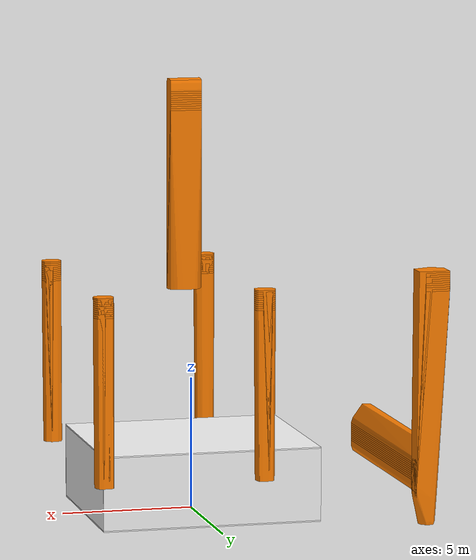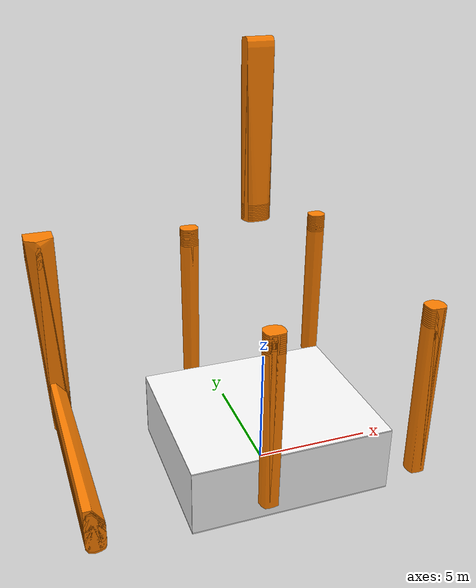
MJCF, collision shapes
<mujoco model="libero_crate_washing">
  <compiler angle="radian" autolimits="true" boundmass="0.001" boundinertia="0.001" />
  <statistic extent="0.5" center="0 0 1.0" />
  <option integrator="implicitfast" timestep="0.0005" solver="Newton" iterations="30" cone="elliptic" noslip_iterations="10">
    <flag multiccd="enable" />
  </option>
  <size memory="64M" />
  <visual>
    <global azimuth="120" elevation="-20" offwidth="1920" offheight="1080" />
    <quality shadowsize="8192" offsamples="16" />
    <headlight ambient="0.88 0.88 0.88" diffuse="0.45 0.45 0.45" specular="0 0 0" />
    <map znear="0.005" zfar="50" />
    <rgba haze="1.0 1.0 1.0 1" />
  </visual>
  <asset>
    <material name="room_white" rgba="0.97 0.97 0.97 1" />
    <material name="room_floor" rgba="0.92 0.92 0.92 1" />
    <material name="room_ceiling" rgba="0.99 0.99 0.99 1" />
    <material name="crate_machine_default" rgba="0.62 0.62 0.66 1" />
    <material name="crate_box_default" rgba="0.25 0.45 0.70 1" />
    <mesh name="crate_machine_visual" file="../sim_models/crate_washing/crate_machine_flat.obj" scale="0.1 0.1 0.1" />
    <mesh name="crate_machine_col_00" file="../sim_models/crate_washing/crate_machine_collision/part_00.obj" scale="0.1 0.1 0.1" />
    <mesh name="crate_machine_col_01" file="../sim_models/crate_washing/crate_machine_collision/part_01.obj" scale="0.1 0.1 0.1" />
    <mesh name="crate_machine_col_02" file="../sim_models/crate_washing/crate_machine_collision/part_02.obj" scale="0.1 0.1 0.1" />
    <mesh name="crate_machine_col_03" file="../sim_models/crate_washing/crate_machine_collision/part_03.obj" scale="0.1 0.1 0.1" />
    <mesh name="crate_machine_col_04" file="../sim_models/crate_washing/crate_machine_collision/part_04.obj" scale="0.1 0.1 0.1" />
    <mesh name="crate_machine_col_05" file="../sim_models/crate_washing/crate_machine_collision/part_05.obj" scale="0.1 0.1 0.1" />
    <mesh name="crate_machine_col_06" file="../sim_models/crate_washing/crate_machine_collision/part_06.obj" scale="0.1 0.1 0.1" />
    <mesh name="crate_machine_col_07" file="../sim_models/crate_washing/crate_machine_collision/part_07.obj" scale="0.1 0.1 0.1" />
    <mesh name="crate_machine_col_08" file="../sim_models/crate_washing/crate_machine_collision/part_08.obj" scale="0.1 0.1 0.1" />
    <mesh name="crate_machine_col_09" file="../sim_models/crate_washing/crate_machine_collision/part_09.obj" scale="0.1 0.1 0.1" />
    <mesh name="crate_machine_col_10" file="../sim_models/crate_washing/crate_machine_collision/part_10.obj" scale="0.1 0.1 0.1" />
    <mesh name="crate_machine_col_11" file="../sim_models/crate_washing/crate_machine_collision/part_11.obj" scale="0.1 0.1 0.1" />
    <mesh name="crate_machine_col_12" file="../sim_models/crate_washing/crate_machine_collision/part_12.obj" scale="0.1 0.1 0.1" />
    <mesh name="crate_machine_col_13" file="../sim_models/crate_washing/crate_machine_collision/part_13.obj" scale="0.1 0.1 0.1" />
    <mesh name="crate_machine_col_14" file="../sim_models/crate_washing/crate_machine_collision/part_14.obj" scale="0.1 0.1 0.1" />
    <mesh name="crate_machine_col_15" file="../sim_models/crate_washing/crate_machine_collision/part_15.obj" scale="0.1 0.1 0.1" />
    <mesh name="crate_machine_col_16" file="../sim_models/crate_washing/crate_machine_collision/part_16.obj" scale="0.1 0.1 0.1" />
    <mesh name="crate_machine_col_17" file="../sim_models/crate_washing/crate_machine_collision/part_17.obj" scale="0.1 0.1 0.1" />
    <mesh name="crate_machine_col_18" file="../sim_models/crate_washing/crate_machine_collision/part_18.obj" scale="0.1 0.1 0.1" />
    <mesh name="crate_machine_col_19" file="../sim_models/crate_washing/crate_machine_collision/part_19.obj" scale="0.1 0.1 0.1" />
    <mesh name="crate_machine_col_20" file="../sim_models/crate_washing/crate_machine_collision/part_20.obj" scale="0.1 0.1 0.1" />
    <mesh name="crate_machine_col_21" file="../sim_models/crate_washing/crate_machine_collision/part_21.obj" scale="0.1 0.1 0.1" />
    <mesh name="crate_machine_col_22" file="../sim_models/crate_washing/crate_machine_collision/part_22.obj" scale="0.1 0.1 0.1" />
    <mesh name="crate_machine_col_23" file="../sim_models/crate_washing/crate_machine_collision/part_23.obj" scale="0.1 0.1 0.1" />
    <mesh name="crate_machine_col_24" file="../sim_models/crate_washing/crate_machine_collision/part_24.obj" scale="0.1 0.1 0.1" />
    <mesh name="crate_machine_col_25" file="../sim_models/crate_washing/crate_machine_collision/part_25.obj" scale="0.1 0.1 0.1" />
    <mesh name="crate_machine_col_26" file="../sim_models/crate_washing/crate_machine_collision/part_26.obj" scale="0.1 0.1 0.1" />
    <mesh name="crate_machine_col_27" file="../sim_models/crate_washing/crate_machine_collision/part_27.obj" scale="0.1 0.1 0.1" />
    <mesh name="crate_machine_col_28" file="../sim_models/crate_washing/crate_machine_collision/part_28.obj" scale="0.1 0.1 0.1" />
    <mesh name="crate_machine_col_29" file="../sim_models/crate_washing/crate_machine_collision/part_29.obj" scale="0.1 0.1 0.1" />
    <mesh name="crate_machine_col_30" file="../sim_models/crate_washing/crate_machine_collision/part_30.obj" scale="0.1 0.1 0.1" />
    <mesh name="crate_machine_col_31" file="../sim_models/crate_washing/crate_machine_collision/part_31.obj" scale="0.1 0.1 0.1" />
    <mesh name="crate_machine_col_32" file="../sim_models/crate_washing/crate_machine_collision/part_32.obj" scale="0.1 0.1 0.1" />
    <mesh name="crate_machine_col_33" file="../sim_models/crate_washing/crate_machine_collision/part_33.obj" scale="0.1 0.1 0.1" />
    <mesh name="crate_machine_col_34" file="../sim_models/crate_washing/crate_machine_collision/part_34.obj" scale="0.1 0.1 0.1" />
    <mesh name="crate_machine_col_35" file="../sim_models/crate_washing/crate_machine_collision/part_35.obj" scale="0.1 0.1 0.1" />
    <mesh name="crate_machine_col_36" file="../sim_models/crate_washing/crate_machine_collision/part_36.obj" scale="0.1 0.1 0.1" />
    <mesh name="crate_machine_col_37" file="../sim_models/crate_washing/crate_machine_collision/part_37.obj" scale="0.1 0.1 0.1" />
    <mesh name="crate_machine_col_38" file="../sim_models/crate_washing/crate_machine_collision/part_38.obj" scale="0.1 0.1 0.1" />
    <mesh name="crate_machine_col_39" file="../sim_models/crate_washing/crate_machine_collision/part_39.obj" scale="0.1 0.1 0.1" />
    <mesh name="crate_machine_col_40" file="../sim_models/crate_washing/crate_machine_collision/part_40.obj" scale="0.1 0.1 0.1" />
    <mesh name="crate_machine_col_41" file="../sim_models/crate_washing/crate_machine_collision/part_41.obj" scale="0.1 0.1 0.1" />
    <mesh name="crate_machine_col_42" file="../sim_models/crate_washing/crate_machine_collision/part_42.obj" scale="0.1 0.1 0.1" />
    <mesh name="crate_machine_col_43" file="../sim_models/crate_washing/crate_machine_collision/part_43.obj" scale="0.1 0.1 0.1" />
    <mesh name="crate_machine_col_44" file="../sim_models/crate_washing/crate_machine_collision/part_44.obj" scale="0.1 0.1 0.1" />
    <mesh name="crate_machine_col_45" file="../sim_models/crate_washing/crate_machine_collision/part_45.obj" scale="0.1 0.1 0.1" />
    <mesh name="crate_machine_col_46" file="../sim_models/crate_washing/crate_machine_collision/part_46.obj" scale="0.1 0.1 0.1" />
    <mesh name="crate_machine_col_47" file="../sim_models/crate_washing/crate_machine_collision/part_47.obj" scale="0.1 0.1 0.1" />
    <mesh name="crate_box_visual" file="../sim_models/crate_washing/crate_with_handles_v5/black_crate.stl" />
    <mesh name="crate_box_col_00" file="../sim_models/crate_washing/crate_with_handles_v5/collision/part_00.obj" />
    <mesh name="crate_box_col_01" file="../sim_models/crate_washing/crate_with_handles_v5/collision/part_01.obj" />
    <mesh name="crate_box_col_02" file="../sim_models/crate_washing/crate_with_handles_v5/collision/part_02.obj" />
    <mesh name="crate_box_col_03" file="../sim_models/crate_washing/crate_with_handles_v5/collision/part_03.obj" />
    <mesh name="crate_box_col_04" file="../sim_models/crate_washing/crate_with_handles_v5/collision/part_04.obj" />
    <mesh name="crate_box_col_05" file="../sim_models/crate_washing/crate_with_handles_v5/collision/part_05.obj" />
    <mesh name="crate_box_col_06" file="../sim_models/crate_washing/crate_with_handles_v5/collision/part_06.obj" />
    <texture type="skybox" builtin="gradient" rgb1="1.0 1.0 1.0" rgb2="0.98 0.98 0.98" width="512" height="3072" />
  </asset>
  <worldbody>
    <light pos="0 0 2.5" dir="0 0 -1" directional="true" diffuse="0.70 0.70 0.70" specular="0.0 0.0 0.0" />
    <light pos="1.0 -1.0 2.5" dir="-0.4 0.4 -1" directional="true" diffuse="0.50 0.50 0.50" specular="0.0 0.0 0.0" />
    <light pos="2.5 0 1.2" dir="-1 0 -0.1" directional="true" diffuse="0.25 0.25 0.25" specular="0.0 0.0 0.0" />
    <geom name="floor" type="box" pos="0 0 -0.025" size="4.1648 3.4790 0.025" material="room_floor" contype="1" conaffinity="1" group="2" />
    <geom name="ceiling" type="box" pos="0 0 2.7682" size="4.1648 3.4790 0.025" material="room_ceiling" contype="0" conaffinity="0" group="2" />
    <geom name="wall_xpos" type="box" pos="4.1398 0 1.3716" size="0.025 3.4540 1.3716" material="room_white" contype="0" conaffinity="0" group="2" />
    <geom name="wall_xneg" type="box" pos="-4.1398 0 1.3716" size="0.025 3.4540 1.3716" material="room_white" contype="0" conaffinity="0" group="2" />
    <geom name="wall_ypos" type="box" pos="0 3.4540 1.3716" size="4.1648 0.025 1.3716" material="room_white" contype="0" conaffinity="0" group="2" />
    <geom name="wall_yneg" type="box" pos="0 -3.4540 1.3716" size="4.1648 0.025 1.3716" material="room_white" contype="0" conaffinity="0" group="2" />
    <body name="top_camera_mount" pos="1.0 -1.5 1.0" quat="0.7071 0.7071 0 0">
      <camera name="top" pos="0 0 0" xyaxes="1 0 0 0 1 0" fovy="58" />
    </body>
    <body name="scene_camera_mount" pos="-1.4 -1.6 1.6">
      <camera name="scene" pos="0 0 0" mode="targetbody" target="crate_box_1" fovy="58" />
    </body>
    <body name="bimanual_agentview_mount" pos="3.0 -1.5 1.8">
      <camera name="bimanual_agentview" pos="0 0 0" mode="targetbody" target="crate_box_11" fovy="45" />
    </body>
    <body name="arms_frontside_mount" pos="0.3 1.7 1.35">
      <camera name="arms_frontside" pos="0 0 0" mode="targetbody" target="crate_box_11" fovy="50" />
    </body>
    <body name="crate_machine" pos="0 0 0" quat="1 0 0 0">
      <geom name="crate_machine_visual" type="mesh" mesh="crate_machine_visual" material="crate_machine_default" contype="0" conaffinity="0" group="2" />
      <geom name="crate_machine_col_00" type="mesh" mesh="crate_machine_col_00" contype="1" conaffinity="1" group="3" friction="1.0 0.005 0.0001" rgba="0.1 0.7 1 0.18" />
      <geom name="crate_machine_col_01" type="mesh" mesh="crate_machine_col_01" contype="1" conaffinity="1" group="3" friction="1.0 0.005 0.0001" rgba="0.1 0.7 1 0.18" />
      <geom name="crate_machine_col_02" type="mesh" mesh="crate_machine_col_02" contype="1" conaffinity="1" group="3" friction="1.0 0.005 0.0001" rgba="0.1 0.7 1 0.18" />
      <geom name="crate_machine_col_03" type="mesh" mesh="crate_machine_col_03" contype="1" conaffinity="1" group="3" friction="1.0 0.005 0.0001" rgba="0.1 0.7 1 0.18" />
      <geom name="crate_machine_col_04" type="mesh" mesh="crate_machine_col_04" contype="1" conaffinity="1" group="3" friction="1.0 0.005 0.0001" rgba="0.1 0.7 1 0.18" />
      <geom name="crate_machine_col_05" type="mesh" mesh="crate_machine_col_05" contype="1" conaffinity="1" group="3" friction="1.0 0.005 0.0001" rgba="0.1 0.7 1 0.18" />
      <geom name="crate_machine_col_06" type="mesh" mesh="crate_machine_col_06" contype="1" conaffinity="1" group="3" friction="1.0 0.005 0.0001" rgba="0.1 0.7 1 0.18" />
      <geom name="crate_machine_col_07" type="mesh" mesh="crate_machine_col_07" contype="1" conaffinity="1" group="3" friction="1.0 0.005 0.0001" rgba="0.1 0.7 1 0.18" />
      <geom name="crate_machine_col_08" type="mesh" mesh="crate_machine_col_08" contype="1" conaffinity="1" group="3" friction="1.0 0.005 0.0001" rgba="0.1 0.7 1 0.18" />
      <geom name="crate_machine_col_09" type="mesh" mesh="crate_machine_col_09" contype="1" conaffinity="1" group="3" friction="1.0 0.005 0.0001" rgba="0.1 0.7 1 0.18" />
      <geom name="crate_machine_col_10" type="mesh" mesh="crate_machine_col_10" contype="1" conaffinity="1" group="3" friction="1.0 0.005 0.0001" rgba="0.1 0.7 1 0.18" />
      <geom name="crate_machine_col_11" type="mesh" mesh="crate_machine_col_11" contype="1" conaffinity="1" group="3" friction="1.0 0.005 0.0001" rgba="0.1 0.7 1 0.18" />
      <geom name="crate_machine_col_12" type="mesh" mesh="crate_machine_col_12" contype="1" conaffinity="1" group="3" friction="1.0 0.005 0.0001" rgba="0.1 0.7 1 0.18" />
      <geom name="crate_machine_col_13" type="mesh" mesh="crate_machine_col_13" contype="1" conaffinity="1" group="3" friction="1.0 0.005 0.0001" rgba="0.1 0.7 1 0.18" />
      <geom name="crate_machine_col_14" type="mesh" mesh="crate_machine_col_14" contype="1" conaffinity="1" group="3" friction="1.0 0.005 0.0001" rgba="0.1 0.7 1 0.18" />
      <geom name="crate_machine_col_15" type="mesh" mesh="crate_machine_col_15" contype="1" conaffinity="1" group="3" friction="1.0 0.005 0.0001" rgba="0.1 0.7 1 0.18" />
      <geom name="crate_machine_col_16" type="mesh" mesh="crate_machine_col_16" contype="1" conaffinity="1" group="3" friction="1.0 0.005 0.0001" rgba="0.1 0.7 1 0.18" />
      <geom name="crate_machine_col_17" type="mesh" mesh="crate_machine_col_17" contype="1" conaffinity="1" group="3" friction="1.0 0.005 0.0001" rgba="0.1 0.7 1 0.18" />
      <geom name="crate_machine_col_18" type="mesh" mesh="crate_machine_col_18" contype="1" conaffinity="1" group="3" friction="1.0 0.005 0.0001" rgba="0.1 0.7 1 0.18" />
      <geom name="crate_machine_col_19" type="mesh" mesh="crate_machine_col_19" contype="1" conaffinity="1" group="3" friction="1.0 0.005 0.0001" rgba="0.1 0.7 1 0.18" />
      <geom name="crate_machine_col_20" type="mesh" mesh="crate_machine_col_20" contype="1" conaffinity="1" group="3" friction="1.0 0.005 0.0001" rgba="0.1 0.7 1 0.18" />
      <geom name="crate_machine_col_21" type="mesh" mesh="crate_machine_col_21" contype="1" conaffinity="1" group="3" friction="1.0 0.005 0.0001" rgba="0.1 0.7 1 0.18" />
      <geom name="crate_machine_col_22" type="mesh" mesh="crate_machine_col_22" contype="1" conaffinity="1" group="3" friction="1.0 0.005 0.0001" rgba="0.1 0.7 1 0.18" />
      <geom name="crate_machine_col_23" type="mesh" mesh="crate_machine_col_23" contype="1" conaffinity="1" group="3" friction="1.0 0.005 0.0001" rgba="0.1 0.7 1 0.18" />
      <geom name="crate_machine_col_24" type="mesh" mesh="crate_machine_col_24" contype="1" conaffinity="1" group="3" friction="1.0 0.005 0.0001" rgba="0.1 0.7 1 0.18" />
      <geom name="crate_machine_col_25" type="mesh" mesh="crate_machine_col_25" contype="1" conaffinity="1" group="3" friction="1.0 0.005 0.0001" rgba="0.1 0.7 1 0.18" />
      <geom name="crate_machine_col_26" type="mesh" mesh="crate_machine_col_26" contype="1" conaffinity="1" group="3" friction="1.0 0.005 0.0001" rgba="0.1 0.7 1 0.18" />
      <geom name="crate_machine_col_27" type="mesh" mesh="crate_machine_col_27" contype="1" conaffinity="1" group="3" friction="1.0 0.005 0.0001" rgba="0.1 0.7 1 0.18" />
      <geom name="crate_machine_col_28" type="mesh" mesh="crate_machine_col_28" contype="1" conaffinity="1" group="3" friction="1.0 0.005 0.0001" rgba="0.1 0.7 1 0.18" />
      <geom name="crate_machine_col_29" type="mesh" mesh="crate_machine_col_29" contype="1" conaffinity="1" group="3" friction="1.0 0.005 0.0001" rgba="0.1 0.7 1 0.18" />
      <geom name="crate_machine_col_30" type="mesh" mesh="crate_machine_col_30" contype="1" conaffinity="1" group="3" friction="1.0 0.005 0.0001" rgba="0.1 0.7 1 0.18" />
      <geom name="crate_machine_col_31" type="mesh" mesh="crate_machine_col_31" contype="1" conaffinity="1" group="3" friction="1.0 0.005 0.0001" rgba="0.1 0.7 1 0.18" />
      <geom name="crate_machine_col_32" type="mesh" mesh="crate_machine_col_32" contype="1" conaffinity="1" group="3" friction="1.0 0.005 0.0001" rgba="0.1 0.7 1 0.18" />
      <geom name="crate_machine_col_33" type="mesh" mesh="crate_machine_col_33" contype="1" conaffinity="1" group="3" friction="1.0 0.005 0.0001" rgba="0.1 0.7 1 0.18" />
      <geom name="crate_machine_col_34" type="mesh" mesh="crate_machine_col_34" contype="1" conaffinity="1" group="3" friction="1.0 0.005 0.0001" rgba="0.1 0.7 1 0.18" />
      <geom name="crate_machine_col_35" type="mesh" mesh="crate_machine_col_35" contype="1" conaffinity="1" group="3" friction="1.0 0.005 0.0001" rgba="0.1 0.7 1 0.18" />
      <geom name="crate_machine_col_36" type="mesh" mesh="crate_machine_col_36" contype="1" conaffinity="1" group="3" friction="1.0 0.005 0.0001" rgba="0.1 0.7 1 0.18" />
      <geom name="crate_machine_col_37" type="mesh" mesh="crate_machine_col_37" contype="1" conaffinity="1" group="3" friction="1.0 0.005 0.0001" rgba="0.1 0.7 1 0.18" />
      <geom name="crate_machine_col_38" type="mesh" mesh="crate_machine_col_38" contype="1" conaffinity="1" group="3" friction="1.0 0.005 0.0001" rgba="0.1 0.7 1 0.18" />
      <geom name="crate_machine_col_39" type="mesh" mesh="crate_machine_col_39" contype="1" conaffinity="1" group="3" friction="1.0 0.005 0.0001" rgba="0.1 0.7 1 0.18" />
      <geom name="crate_machine_col_40" type="mesh" mesh="crate_machine_col_40" contype="1" conaffinity="1" group="3" friction="1.0 0.005 0.0001" rgba="0.1 0.7 1 0.18" />
      <geom name="crate_machine_col_41" type="mesh" mesh="crate_machine_col_41" contype="1" conaffinity="1" group="3" friction="1.0 0.005 0.0001" rgba="0.1 0.7 1 0.18" />
      <geom name="crate_machine_col_42" type="mesh" mesh="crate_machine_col_42" contype="1" conaffinity="1" group="3" friction="1.0 0.005 0.0001" rgba="0.1 0.7 1 0.18" />
      <geom name="crate_machine_col_43" type="mesh" mesh="crate_machine_col_43" contype="1" conaffinity="1" group="3" friction="1.0 0.005 0.0001" rgba="0.1 0.7 1 0.18" />
      <geom name="crate_machine_col_44" type="mesh" mesh="crate_machine_col_44" contype="1" conaffinity="1" group="3" friction="1.0 0.005 0.0001" rgba="0.1 0.7 1 0.18" />
      <geom name="crate_machine_col_45" type="mesh" mesh="crate_machine_col_45" contype="1" conaffinity="1" group="3" friction="1.0 0.005 0.0001" rgba="0.1 0.7 1 0.18" />
      <geom name="crate_machine_col_46" type="mesh" mesh="crate_machine_col_46" contype="1" conaffinity="1" group="3" friction="1.0 0.005 0.0001" rgba="0.1 0.7 1 0.18" />
      <geom name="crate_machine_col_47" type="mesh" mesh="crate_machine_col_47" contype="1" conaffinity="1" group="3" friction="1.0 0.005 0.0001" rgba="0.1 0.7 1 0.18" />
    </body>
    <body name="crate_box_1" pos="1.38 0 0.037500">
      <geom name="crate_box_1_visual" type="mesh" mesh="crate_box_visual" material="crate_box_default" contype="0" conaffinity="0" group="2" />
      <geom name="crate_box_1_col_00" type="mesh" mesh="crate_box_col_00" contype="1" conaffinity="1" group="3" friction="1.2 0.1 0.005" rgba="1 0.5 0 0.18" />
      <geom name="crate_box_1_col_01" type="mesh" mesh="crate_box_col_01" contype="1" conaffinity="1" group="3" friction="1.2 0.1 0.005" rgba="1 0.5 0 0.18" />
      <geom name="crate_box_1_col_02" type="mesh" mesh="crate_box_col_02" contype="1" conaffinity="1" group="3" friction="1.2 0.1 0.005" rgba="1 0.5 0 0.18" />
      <geom name="crate_box_1_col_03" type="mesh" mesh="crate_box_col_03" contype="1" conaffinity="1" group="3" friction="1.2 0.1 0.005" rgba="1 0.5 0 0.18" />
      <geom name="crate_box_1_col_04" type="mesh" mesh="crate_box_col_04" contype="1" conaffinity="1" group="3" friction="1.2 0.1 0.005" rgba="1 0.5 0 0.18" />
      <geom name="crate_box_1_col_05" type="mesh" mesh="crate_box_col_05" contype="1" conaffinity="1" group="3" friction="1.2 0.1 0.005" rgba="1 0.5 0 0.18" />
      <geom name="crate_box_1_col_06" type="mesh" mesh="crate_box_col_06" contype="1" conaffinity="1" group="3" friction="1.2 0.1 0.005" rgba="1 0.5 0 0.18" />
    </body>
    <body name="crate_box_2" pos="1.38 0 0.114500">
      <geom name="crate_box_2_visual" type="mesh" mesh="crate_box_visual" material="crate_box_default" contype="0" conaffinity="0" group="2" />
      <geom name="crate_box_2_col_00" type="mesh" mesh="crate_box_col_00" contype="1" conaffinity="1" group="3" friction="1.2 0.1 0.005" rgba="1 0.5 0 0.18" />
      <geom name="crate_box_2_col_01" type="mesh" mesh="crate_box_col_01" contype="1" conaffinity="1" group="3" friction="1.2 0.1 0.005" rgba="1 0.5 0 0.18" />
      <geom name="crate_box_2_col_02" type="mesh" mesh="crate_box_col_02" contype="1" conaffinity="1" group="3" friction="1.2 0.1 0.005" rgba="1 0.5 0 0.18" />
      <geom name="crate_box_2_col_03" type="mesh" mesh="crate_box_col_03" contype="1" conaffinity="1" group="3" friction="1.2 0.1 0.005" rgba="1 0.5 0 0.18" />
      <geom name="crate_box_2_col_04" type="mesh" mesh="crate_box_col_04" contype="1" conaffinity="1" group="3" friction="1.2 0.1 0.005" rgba="1 0.5 0 0.18" />
      <geom name="crate_box_2_col_05" type="mesh" mesh="crate_box_col_05" contype="1" conaffinity="1" group="3" friction="1.2 0.1 0.005" rgba="1 0.5 0 0.18" />
      <geom name="crate_box_2_col_06" type="mesh" mesh="crate_box_col_06" contype="1" conaffinity="1" group="3" friction="1.2 0.1 0.005" rgba="1 0.5 0 0.18" />
    </body>
    <body name="crate_box_3" pos="1.38 0 0.191500">
      <geom name="crate_box_3_visual" type="mesh" mesh="crate_box_visual" material="crate_box_default" contype="0" conaffinity="0" group="2" />
      <geom name="crate_box_3_col_00" type="mesh" mesh="crate_box_col_00" contype="1" conaffinity="1" group="3" friction="1.2 0.1 0.005" rgba="1 0.5 0 0.18" />
      <geom name="crate_box_3_col_01" type="mesh" mesh="crate_box_col_01" contype="1" conaffinity="1" group="3" friction="1.2 0.1 0.005" rgba="1 0.5 0 0.18" />
      <geom name="crate_box_3_col_02" type="mesh" mesh="crate_box_col_02" contype="1" conaffinity="1" group="3" friction="1.2 0.1 0.005" rgba="1 0.5 0 0.18" />
      <geom name="crate_box_3_col_03" type="mesh" mesh="crate_box_col_03" contype="1" conaffinity="1" group="3" friction="1.2 0.1 0.005" rgba="1 0.5 0 0.18" />
      <geom name="crate_box_3_col_04" type="mesh" mesh="crate_box_col_04" contype="1" conaffinity="1" group="3" friction="1.2 0.1 0.005" rgba="1 0.5 0 0.18" />
      <geom name="crate_box_3_col_05" type="mesh" mesh="crate_box_col_05" contype="1" conaffinity="1" group="3" friction="1.2 0.1 0.005" rgba="1 0.5 0 0.18" />
      <geom name="crate_box_3_col_06" type="mesh" mesh="crate_box_col_06" contype="1" conaffinity="1" group="3" friction="1.2 0.1 0.005" rgba="1 0.5 0 0.18" />
    </body>
    <body name="crate_box_4" pos="1.38 0 0.268500">
      <geom name="crate_box_4_visual" type="mesh" mesh="crate_box_visual" material="crate_box_default" contype="0" conaffinity="0" group="2" />
      <geom name="crate_box_4_col_00" type="mesh" mesh="crate_box_col_00" contype="1" conaffinity="1" group="3" friction="1.2 0.1 0.005" rgba="1 0.5 0 0.18" />
      <geom name="crate_box_4_col_01" type="mesh" mesh="crate_box_col_01" contype="1" conaffinity="1" group="3" friction="1.2 0.1 0.005" rgba="1 0.5 0 0.18" />
      <geom name="crate_box_4_col_02" type="mesh" mesh="crate_box_col_02" contype="1" conaffinity="1" group="3" friction="1.2 0.1 0.005" rgba="1 0.5 0 0.18" />
      <geom name="crate_box_4_col_03" type="mesh" mesh="crate_box_col_03" contype="1" conaffinity="1" group="3" friction="1.2 0.1 0.005" rgba="1 0.5 0 0.18" />
      <geom name="crate_box_4_col_04" type="mesh" mesh="crate_box_col_04" contype="1" conaffinity="1" group="3" friction="1.2 0.1 0.005" rgba="1 0.5 0 0.18" />
      <geom name="crate_box_4_col_05" type="mesh" mesh="crate_box_col_05" contype="1" conaffinity="1" group="3" friction="1.2 0.1 0.005" rgba="1 0.5 0 0.18" />
      <geom name="crate_box_4_col_06" type="mesh" mesh="crate_box_col_06" contype="1" conaffinity="1" group="3" friction="1.2 0.1 0.005" rgba="1 0.5 0 0.18" />
    </body>
    <body name="crate_box_5" pos="1.38 0 0.345500">
      <geom name="crate_box_5_visual" type="mesh" mesh="crate_box_visual" material="crate_box_default" contype="0" conaffinity="0" group="2" />
      <geom name="crate_box_5_col_00" type="mesh" mesh="crate_box_col_00" contype="1" conaffinity="1" group="3" friction="1.2 0.1 0.005" rgba="1 0.5 0 0.18" />
      <geom name="crate_box_5_col_01" type="mesh" mesh="crate_box_col_01" contype="1" conaffinity="1" group="3" friction="1.2 0.1 0.005" rgba="1 0.5 0 0.18" />
      <geom name="crate_box_5_col_02" type="mesh" mesh="crate_box_col_02" contype="1" conaffinity="1" group="3" friction="1.2 0.1 0.005" rgba="1 0.5 0 0.18" />
      <geom name="crate_box_5_col_03" type="mesh" mesh="crate_box_col_03" contype="1" conaffinity="1" group="3" friction="1.2 0.1 0.005" rgba="1 0.5 0 0.18" />
      <geom name="crate_box_5_col_04" type="mesh" mesh="crate_box_col_04" contype="1" conaffinity="1" group="3" friction="1.2 0.1 0.005" rgba="1 0.5 0 0.18" />
      <geom name="crate_box_5_col_05" type="mesh" mesh="crate_box_col_05" contype="1" conaffinity="1" group="3" friction="1.2 0.1 0.005" rgba="1 0.5 0 0.18" />
      <geom name="crate_box_5_col_06" type="mesh" mesh="crate_box_col_06" contype="1" conaffinity="1" group="3" friction="1.2 0.1 0.005" rgba="1 0.5 0 0.18" />
    </body>
    <body name="crate_box_6" pos="1.38 0 0.422500">
      <geom name="crate_box_6_visual" type="mesh" mesh="crate_box_visual" material="crate_box_default" contype="0" conaffinity="0" group="2" />
      <geom name="crate_box_6_col_00" type="mesh" mesh="crate_box_col_00" contype="1" conaffinity="1" group="3" friction="1.2 0.1 0.005" rgba="1 0.5 0 0.18" />
      <geom name="crate_box_6_col_01" type="mesh" mesh="crate_box_col_01" contype="1" conaffinity="1" group="3" friction="1.2 0.1 0.005" rgba="1 0.5 0 0.18" />
      <geom name="crate_box_6_col_02" type="mesh" mesh="crate_box_col_02" contype="1" conaffinity="1" group="3" friction="1.2 0.1 0.005" rgba="1 0.5 0 0.18" />
      <geom name="crate_box_6_col_03" type="mesh" mesh="crate_box_col_03" contype="1" conaffinity="1" group="3" friction="1.2 0.1 0.005" rgba="1 0.5 0 0.18" />
      <geom name="crate_box_6_col_04" type="mesh" mesh="crate_box_col_04" contype="1" conaffinity="1" group="3" friction="1.2 0.1 0.005" rgba="1 0.5 0 0.18" />
      <geom name="crate_box_6_col_05" type="mesh" mesh="crate_box_col_05" contype="1" conaffinity="1" group="3" friction="1.2 0.1 0.005" rgba="1 0.5 0 0.18" />
      <geom name="crate_box_6_col_06" type="mesh" mesh="crate_box_col_06" contype="1" conaffinity="1" group="3" friction="1.2 0.1 0.005" rgba="1 0.5 0 0.18" />
    </body>
    <body name="crate_box_7" pos="1.38 0 0.499500">
      <geom name="crate_box_7_visual" type="mesh" mesh="crate_box_visual" material="crate_box_default" contype="0" conaffinity="0" group="2" />
      <geom name="crate_box_7_col_00" type="mesh" mesh="crate_box_col_00" contype="1" conaffinity="1" group="3" friction="1.2 0.1 0.005" rgba="1 0.5 0 0.18" />
      <geom name="crate_box_7_col_01" type="mesh" mesh="crate_box_col_01" contype="1" conaffinity="1" group="3" friction="1.2 0.1 0.005" rgba="1 0.5 0 0.18" />
      <geom name="crate_box_7_col_02" type="mesh" mesh="crate_box_col_02" contype="1" conaffinity="1" group="3" friction="1.2 0.1 0.005" rgba="1 0.5 0 0.18" />
      <geom name="crate_box_7_col_03" type="mesh" mesh="crate_box_col_03" contype="1" conaffinity="1" group="3" friction="1.2 0.1 0.005" rgba="1 0.5 0 0.18" />
      <geom name="crate_box_7_col_04" type="mesh" mesh="crate_box_col_04" contype="1" conaffinity="1" group="3" friction="1.2 0.1 0.005" rgba="1 0.5 0 0.18" />
      <geom name="crate_box_7_col_05" type="mesh" mesh="crate_box_col_05" contype="1" conaffinity="1" group="3" friction="1.2 0.1 0.005" rgba="1 0.5 0 0.18" />
      <geom name="crate_box_7_col_06" type="mesh" mesh="crate_box_col_06" contype="1" conaffinity="1" group="3" friction="1.2 0.1 0.005" rgba="1 0.5 0 0.18" />
    </body>
    <body name="crate_box_8" pos="1.38 0 0.576500">
      <geom name="crate_box_8_visual" type="mesh" mesh="crate_box_visual" material="crate_box_default" contype="0" conaffinity="0" group="2" />
      <geom name="crate_box_8_col_00" type="mesh" mesh="crate_box_col_00" contype="1" conaffinity="1" group="3" friction="1.2 0.1 0.005" rgba="1 0.5 0 0.18" />
      <geom name="crate_box_8_col_01" type="mesh" mesh="crate_box_col_01" contype="1" conaffinity="1" group="3" friction="1.2 0.1 0.005" rgba="1 0.5 0 0.18" />
      <geom name="crate_box_8_col_02" type="mesh" mesh="crate_box_col_02" contype="1" conaffinity="1" group="3" friction="1.2 0.1 0.005" rgba="1 0.5 0 0.18" />
      <geom name="crate_box_8_col_03" type="mesh" mesh="crate_box_col_03" contype="1" conaffinity="1" group="3" friction="1.2 0.1 0.005" rgba="1 0.5 0 0.18" />
      <geom name="crate_box_8_col_04" type="mesh" mesh="crate_box_col_04" contype="1" conaffinity="1" group="3" friction="1.2 0.1 0.005" rgba="1 0.5 0 0.18" />
      <geom name="crate_box_8_col_05" type="mesh" mesh="crate_box_col_05" contype="1" conaffinity="1" group="3" friction="1.2 0.1 0.005" rgba="1 0.5 0 0.18" />
      <geom name="crate_box_8_col_06" type="mesh" mesh="crate_box_col_06" contype="1" conaffinity="1" group="3" friction="1.2 0.1 0.005" rgba="1 0.5 0 0.18" />
    </body>
    <body name="crate_box_9" pos="1.38 0 0.653500">
      <geom name="crate_box_9_visual" type="mesh" mesh="crate_box_visual" material="crate_box_default" contype="0" conaffinity="0" group="2" />
      <geom name="crate_box_9_col_00" type="mesh" mesh="crate_box_col_00" contype="1" conaffinity="1" group="3" friction="1.2 0.1 0.005" rgba="1 0.5 0 0.18" />
      <geom name="crate_box_9_col_01" type="mesh" mesh="crate_box_col_01" contype="1" conaffinity="1" group="3" friction="1.2 0.1 0.005" rgba="1 0.5 0 0.18" />
      <geom name="crate_box_9_col_02" type="mesh" mesh="crate_box_col_02" contype="1" conaffinity="1" group="3" friction="1.2 0.1 0.005" rgba="1 0.5 0 0.18" />
      <geom name="crate_box_9_col_03" type="mesh" mesh="crate_box_col_03" contype="1" conaffinity="1" group="3" friction="1.2 0.1 0.005" rgba="1 0.5 0 0.18" />
      <geom name="crate_box_9_col_04" type="mesh" mesh="crate_box_col_04" contype="1" conaffinity="1" group="3" friction="1.2 0.1 0.005" rgba="1 0.5 0 0.18" />
      <geom name="crate_box_9_col_05" type="mesh" mesh="crate_box_col_05" contype="1" conaffinity="1" group="3" friction="1.2 0.1 0.005" rgba="1 0.5 0 0.18" />
      <geom name="crate_box_9_col_06" type="mesh" mesh="crate_box_col_06" contype="1" conaffinity="1" group="3" friction="1.2 0.1 0.005" rgba="1 0.5 0 0.18" />
    </body>
    <body name="crate_box_10" pos="1.38 0 0.730500">
      <geom name="crate_box_10_visual" type="mesh" mesh="crate_box_visual" material="crate_box_default" contype="0" conaffinity="0" group="2" />
      <geom name="crate_box_10_col_00" type="mesh" mesh="crate_box_col_00" contype="1" conaffinity="1" group="3" friction="1.2 0.1 0.005" rgba="1 0.5 0 0.18" />
      <geom name="crate_box_10_col_01" type="mesh" mesh="crate_box_col_01" contype="1" conaffinity="1" group="3" friction="1.2 0.1 0.005" rgba="1 0.5 0 0.18" />
      <geom name="crate_box_10_col_02" type="mesh" mesh="crate_box_col_02" contype="1" conaffinity="1" group="3" friction="1.2 0.1 0.005" rgba="1 0.5 0 0.18" />
      <geom name="crate_box_10_col_03" type="mesh" mesh="crate_box_col_03" contype="1" conaffinity="1" group="3" friction="1.2 0.1 0.005" rgba="1 0.5 0 0.18" />
      <geom name="crate_box_10_col_04" type="mesh" mesh="crate_box_col_04" contype="1" conaffinity="1" group="3" friction="1.2 0.1 0.005" rgba="1 0.5 0 0.18" />
      <geom name="crate_box_10_col_05" type="mesh" mesh="crate_box_col_05" contype="1" conaffinity="1" group="3" friction="1.2 0.1 0.005" rgba="1 0.5 0 0.18" />
      <geom name="crate_box_10_col_06" type="mesh" mesh="crate_box_col_06" contype="1" conaffinity="1" group="3" friction="1.2 0.1 0.005" rgba="1 0.5 0 0.18" />
    </body>
    <body name="crate_box_11" pos="1.38 0 0.790673">
      <freejoint name="crate_box_11_free" />
      <inertial pos="0 0 0" mass="1.0" diaginertia="0.02344 0.01188 0.03438" />
      <geom name="crate_box_11_visual" type="mesh" mesh="crate_box_visual" material="crate_box_default" contype="0" conaffinity="0" group="2" />
      <geom name="crate_box_11_col_00" type="mesh" mesh="crate_box_col_00" contype="1" conaffinity="1" group="3" friction="1.2 0.1 0.005" rgba="1 0.5 0 0.18" />
      <geom name="crate_box_11_col_01" type="mesh" mesh="crate_box_col_01" contype="1" conaffinity="1" group="3" friction="1.2 0.1 0.005" rgba="1 0.5 0 0.18" />
      <geom name="crate_box_11_col_02" type="mesh" mesh="crate_box_col_02" contype="1" conaffinity="1" group="3" friction="1.2 0.1 0.005" rgba="1 0.5 0 0.18" />
      <geom name="crate_box_11_col_03" type="mesh" mesh="crate_box_col_03" contype="1" conaffinity="1" group="3" friction="1.2 0.1 0.005" rgba="1 0.5 0 0.18" />
      <geom name="crate_box_11_col_04" type="mesh" mesh="crate_box_col_04" contype="1" conaffinity="1" group="3" friction="1.2 0.1 0.005" rgba="1 0.5 0 0.18" />
      <geom name="crate_box_11_col_05" type="mesh" mesh="crate_box_col_05" contype="1" conaffinity="1" group="3" friction="1.2 0.1 0.005" rgba="1 0.5 0 0.18" />
      <geom name="crate_box_11_col_06" type="mesh" mesh="crate_box_col_06" contype="1" conaffinity="1" group="3" friction="1.2 0.1 0.005" rgba="1 0.5 0 0.18" />
    </body>
    <body name="robot_platform" pos="1.87 0 0.38" quat="1 0 0 0">
      <geom name="robot_platform_visual" type="box" size="0.2625 0.3875 0.38" material="crate_machine_default" contype="1" conaffinity="1" group="2" />
    </body>
  </worldbody>
  <keyframe>
    <key name="home" qpos="1.38 0 0.790673 1 0 0 0" />
  </keyframe>
</mujoco>
